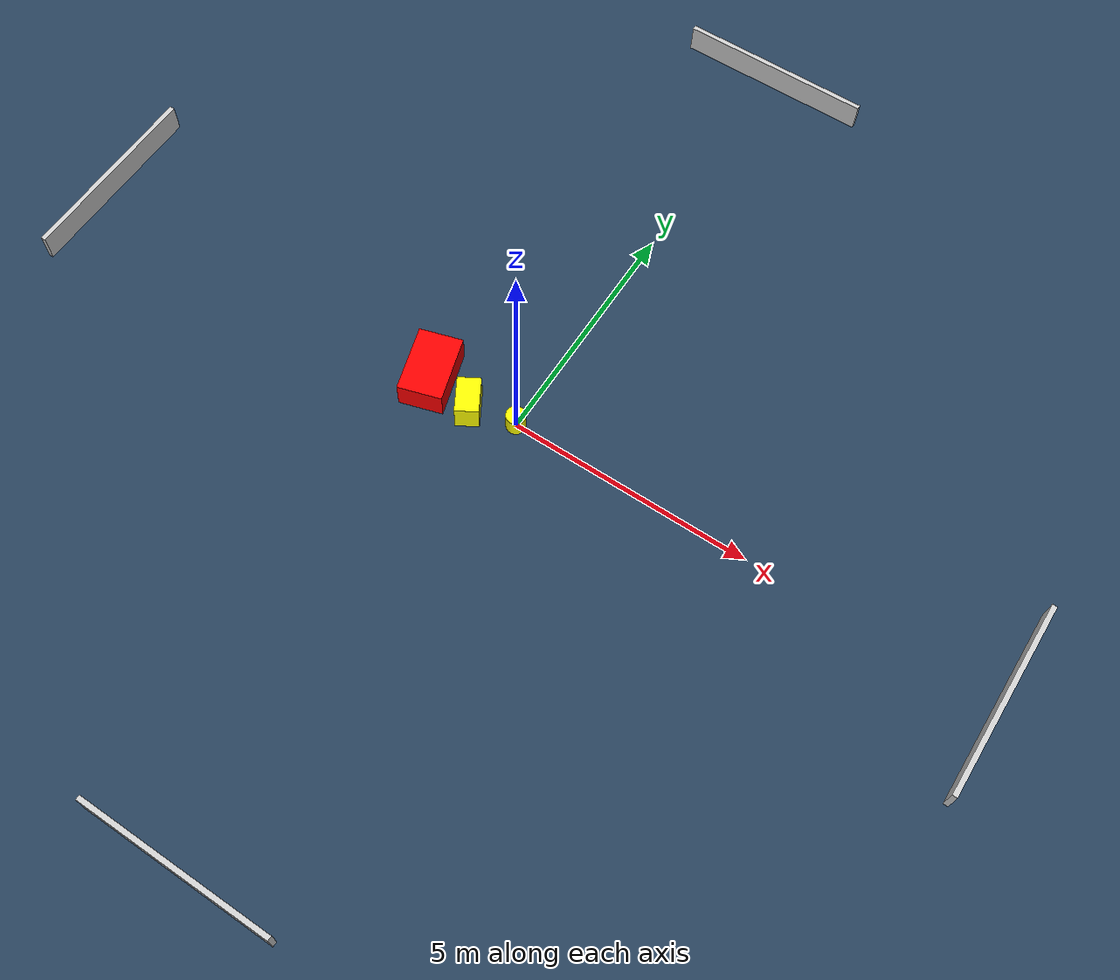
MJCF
<?xml version="1.0" ?>
<mujoco model="generated_environment">
  <option timestep="0.01" integrator="RK4" cone="elliptic"/>
  <default>
    <geom density="1"/>
  </default>
  <asset>
    <texture builtin="gradient" height="3072" name="skybox" rgb1="0.3 0.5 0.7" rgb2="0 0 0" type="skybox" width="512"/>
    <texture builtin="checker" height="300" name="groundplane" rgb1="0.2 0.3 0.4" rgb2="0.1 0.2 0.3" type="2d" width="300"/>
    <material name="groundplane" reflectance="0.2" texrepeat="5 5" texture="groundplane"/>
  </asset>
  <worldbody>
    <light dir="0 0 -1" directional="true" pos="0 0 1.5"/>
    <geom condim="3" friction="0.5 0.005 0.001" material="groundplane" name="floor" pos="0 0 0" size="0 0 0.05" type="plane"/>
    <body name="walls">
      <geom name="wall_1" condim="4" pos="-10.0 0.0 0.3" rgba="0.800000011920929 0.800000011920929 0.800000011920929 1.0" size="0.05 2.0 0.3" type="box"/>
      <geom name="wall_2" condim="4" pos="10.0 0.0 0.3" rgba="0.800000011920929 0.800000011920929 0.800000011920929 1.0" size="0.05 2.0 0.3" type="box"/>
      <geom name="wall_3" condim="4" pos="0.0 -10.0 0.3" rgba="0.800000011920929 0.800000011920929 0.800000011920929 1.0" size="2.0 0.05 0.3" type="box"/>
      <geom name="wall_4" condim="4" pos="0.0 10.0 0.3" rgba="0.800000011920929 0.800000011920929 0.800000011920929 1.0" size="2.0 0.05 0.3" type="box"/>
    </body>
    <body name="robot">
      <joint name="joint_x" type="slide" pos="0 0 0" axis="1 0 0"/>
      <joint name="joint_y" type="slide" pos="0 0 0" axis="0 1 0"/>
      <geom name="robot" type="cylinder" pos="0.0 0.0 0.2" size="0.2 0.2 0.0" mass="5.0" friction="1.0 0.005 0.0001" condim="4" rgba="1.0 1.0 0.0 1.0"/>
    </body>
    <body name="obstacle_1_movable">
      <geom name="obstacle_1_movable" condim="4" pos="-0.9432853482449504 -0.2180806091059606 0.3" euler="0 0 209.95712149886972" friction="0.0 0.005 0.001" rgba="1.0 1.0 0.0 1.0" size="0.23549446283012215 0.3651176640226366 0.3" type="box" mass="0.1"/>
      <joint type="free"/>
    </body>
    <body name="obstacle_2_static">
      <geom name="obstacle_2_static" condim="4" pos="-1.9186110301577517 -0.061261670626041556 0.3" euler="0 0 196.73861616414496" friction="0.0 0.005 0.001" rgba="1.0 0.0 0.0 1.0" size="0.44679100541440375 0.6739856631537496 0.3" type="box"/>
    </body>
  </worldbody>
  <actuator>
    <motor name="actuator_x" joint="joint_x" gear="1" ctrlrange="-1 1"/>
    <motor name="actuator_y" joint="joint_y" gear="1" ctrlrange="-1 1"/>
  </actuator>
</mujoco>
